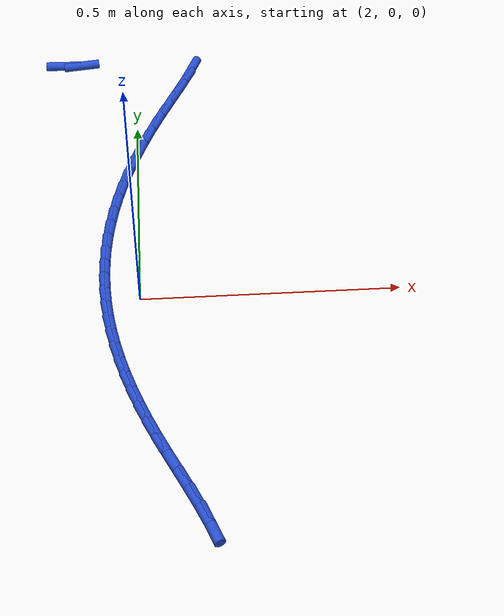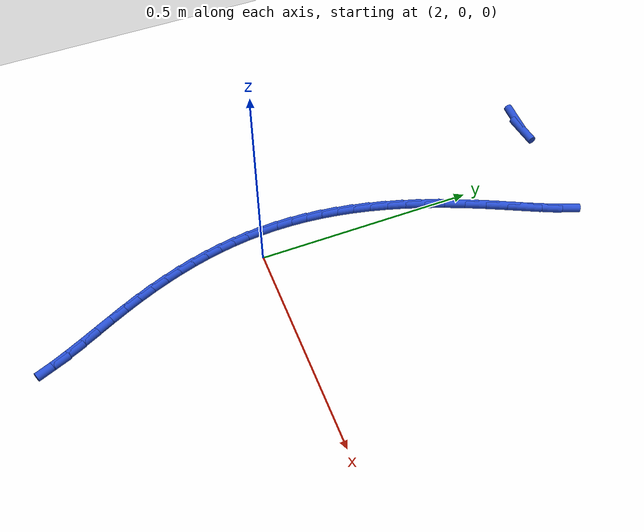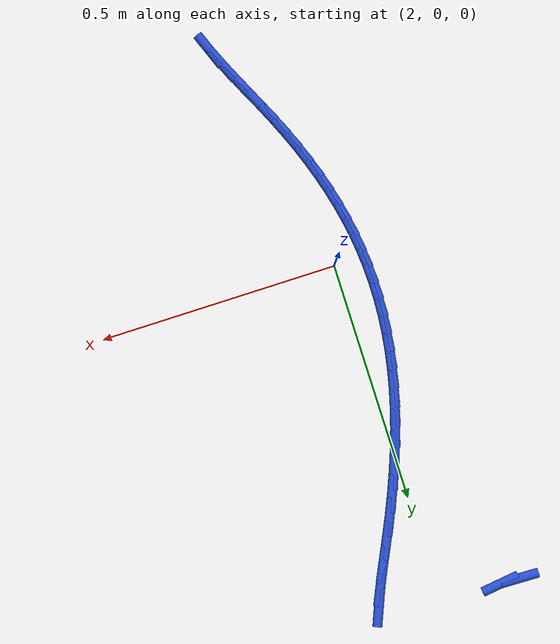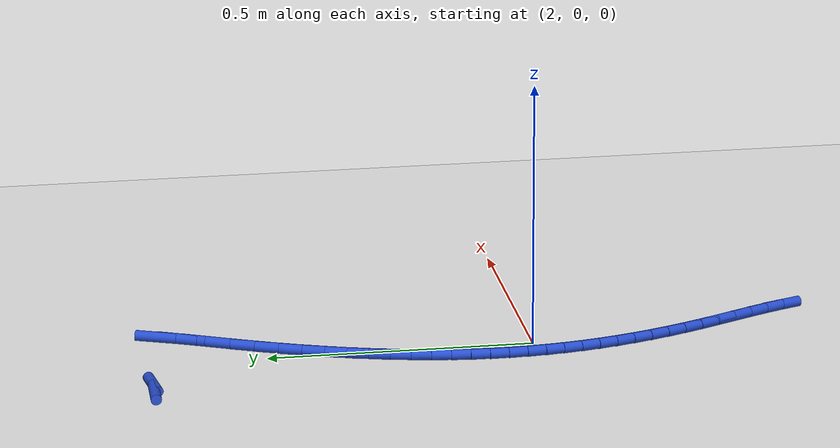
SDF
<sdf version="1.6">
 <world name="default">
  <model name="ground_plane">
   <static>1</static>
   <link name="link">
    <collision name="collision">
     <geometry><plane><normal>0 0 1</normal><size>100 100</size></plane></geometry>
     <surface><friction><ode><mu>100</mu><mu2>50</mu2></ode></friction></surface>
    </collision>
    <visual name="visual">
     <cast_shadows>0</cast_shadows>
     <geometry><plane><normal>0 0 1</normal><size>100 100</size></plane></geometry>
     <material>
      <script><uri>file://media/materials/scripts/gazebo.material</uri><name>Gazebo/WhiteGlow</name></script>
     </material>
    </visual>
   </link>
  </model>
  <model name="line">
   <link name="link_80">
    <pose>1.8326549398146046 0.724464329275963 0.01 0 1.57 -0.023806323502087272</pose>
    <collision name="collision">
     <geometry><cylinder><radius>0.01</radius><length>0.08</length></cylinder></geometry>
    </collision>
    <visual name="visual">
     <material>
      <script><name>Gazebo/Blue</name><uri>file://media/materials/scripts/gazebo.material</uri></script>
     </material>
     <geometry><cylinder><radius>0.01</radius><length>0.08</length></cylinder></geometry>
    </visual>
   </link>
   <link name="link_81">
    <pose>1.873327043071354 0.7234958930705628 0.01 0 1.57 0.13040840547339128</pose>
    <collision name="collision">
     <geometry><cylinder><radius>0.01</radius><length>0.08</length></cylinder></geometry>
    </collision>
    <visual name="visual">
     <material>
      <script><name>Gazebo/Blue</name><uri>file://media/materials/scripts/gazebo.material</uri></script>
     </material>
     <geometry><cylinder><radius>0.01</radius><length>0.08</length></cylinder></geometry>
    </visual>
   </link>
   <link name="link_91">
    <pose>2.1252905175461856 0.693174791233995 0.01 0 1.57 1.1824344360607957</pose>
    <collision name="collision">
     <geometry><cylinder><radius>0.01</radius><length>0.08</length></cylinder></geometry>
    </collision>
    <visual name="visual">
     <material>
      <script><name>Gazebo/Blue</name><uri>file://media/materials/scripts/gazebo.material</uri></script>
     </material>
     <geometry><cylinder><radius>0.01</radius><length>0.08</length></cylinder></geometry>
    </visual>
   </link>
   <link name="link_92">
    <pose>2.109580934330799 0.6547783181338066 0.01 0 1.57 1.138670818970482</pose>
    <collision name="collision">
     <geometry><cylinder><radius>0.01</radius><length>0.08</length></cylinder></geometry>
    </collision>
    <visual name="visual">
     <material>
      <script><name>Gazebo/Blue</name><uri>file://media/materials/scripts/gazebo.material</uri></script>
     </material>
     <geometry><cylinder><radius>0.01</radius><length>0.08</length></cylinder></geometry>
    </visual>
   </link>
   <link name="link_93">
    <pose>2.090067640424137 0.6124681306256387 0.01 0 1.57 1.1241841920452187</pose>
    <collision name="collision">
     <geometry><cylinder><radius>0.01</radius><length>0.08</length></cylinder></geometry>
    </collision>
    <visual name="visual">
     <material>
      <script><name>Gazebo/Blue</name><uri>file://media/materials/scripts/gazebo.material</uri></script>
     </material>
     <geometry><cylinder><radius>0.01</radius><length>0.08</length></cylinder></geometry>
    </visual>
   </link>
   <link name="link_94">
    <pose>2.0688002551658156 0.5680577757618556 0.01 0 1.57 1.1320503994265492</pose>
    <collision name="collision">
     <geometry><cylinder><radius>0.01</radius><length>0.08</length></cylinder></geometry>
    </collision>
    <visual name="visual">
     <material>
      <script><name>Gazebo/Blue</name><uri>file://media/materials/scripts/gazebo.material</uri></script>
     </material>
     <geometry><cylinder><radius>0.01</radius><length>0.08</length></cylinder></geometry>
    </visual>
   </link>
   <link name="link_95">
    <pose>2.047824630730444 0.5233574013210074 0.01 0 1.57 1.156094486937873</pose>
    <collision name="collision">
     <geometry><cylinder><radius>0.01</radius><length>0.08</length></cylinder></geometry>
    </collision>
    <visual name="visual">
     <material>
      <script><name>Gazebo/Blue</name><uri>file://media/materials/scripts/gazebo.material</uri></script>
     </material>
     <geometry><cylinder><radius>0.01</radius><length>0.08</length></cylinder></geometry>
    </visual>
   </link>
   <link name="link_96">
    <pose>2.028570541992315 0.4796212422318486 0.01 0 1.57 1.183788707067085</pose>
    <collision name="collision">
     <geometry><cylinder><radius>0.01</radius><length>0.08</length></cylinder></geometry>
    </collision>
    <visual name="visual">
     <material>
      <script><name>Gazebo/Blue</name><uri>file://media/materials/scripts/gazebo.material</uri></script>
     </material>
     <geometry><cylinder><radius>0.01</radius><length>0.08</length></cylinder></geometry>
    </visual>
   </link>
   <link name="link_97">
    <pose>2.01117358858686 0.43693574385387096 0.01 0 1.57 1.2134644137332158</pose>
    <collision name="collision">
     <geometry><cylinder><radius>0.01</radius><length>0.08</length></cylinder></geometry>
    </collision>
    <visual name="visual">
     <material>
      <script><name>Gazebo/Blue</name><uri>file://media/materials/scripts/gazebo.material</uri></script>
     </material>
     <geometry><cylinder><radius>0.01</radius><length>0.08</length></cylinder></geometry>
    </visual>
   </link>
   <link name="link_98">
    <pose>1.9956060752997251 0.39524000363217643 0.01 0 1.57 1.2451475450937168</pose>
    <collision name="collision">
     <geometry><cylinder><radius>0.01</radius><length>0.08</length></cylinder></geometry>
    </collision>
    <visual name="visual">
     <material>
      <script><name>Gazebo/Blue</name><uri>file://media/materials/scripts/gazebo.material</uri></script>
     </material>
     <geometry><cylinder><radius>0.01</radius><length>0.08</length></cylinder></geometry>
    </visual>
   </link>
   <link name="link_99">
    <pose>1.9818403069165513 0.3544731190118684 0.01 0 1.57 1.2788328422086663</pose>
    <collision name="collision">
     <geometry><cylinder><radius>0.01</radius><length>0.08</length></cylinder></geometry>
    </collision>
    <visual name="visual">
     <material>
      <script><name>Gazebo/Blue</name><uri>file://media/materials/scripts/gazebo.material</uri></script>
     </material>
     <geometry><cylinder><radius>0.01</radius><length>0.08</length></cylinder></geometry>
    </visual>
   </link>
   <link name="link_100">
    <pose>1.9698485882229835 0.31457418743804916 0.01 0 1.57 1.3144770356960842</pose>
    <collision name="collision">
     <geometry><cylinder><radius>0.01</radius><length>0.08</length></cylinder></geometry>
    </collision>
    <visual name="visual">
     <material>
      <script><name>Gazebo/Blue</name><uri>file://media/materials/scripts/gazebo.material</uri></script>
     </material>
     <geometry><cylinder><radius>0.01</radius><length>0.08</length></cylinder></geometry>
    </visual>
   </link>
   <link name="link_101">
    <pose>1.9596032240046624 0.2754823063558203 0.01 0 1.57 1.351992419440996</pose>
    <collision name="collision">
     <geometry><cylinder><radius>0.01</radius><length>0.08</length></cylinder></geometry>
    </collision>
    <visual name="visual">
     <material>
      <script><name>Gazebo/Blue</name><uri>file://media/materials/scripts/gazebo.material</uri></script>
     </material>
     <geometry><cylinder><radius>0.01</radius><length>0.08</length></cylinder></geometry>
    </visual>
   </link>
   <link name="link_102">
    <pose>1.9510765190472328 0.23713657321028517 0.01 0 1.57 1.3912415287960167</pose>
    <collision name="collision">
     <geometry><cylinder><radius>0.01</radius><length>0.08</length></cylinder></geometry>
    </collision>
    <visual name="visual">
     <material>
      <script><name>Gazebo/Blue</name><uri>file://media/materials/scripts/gazebo.material</uri></script>
     </material>
     <geometry><cylinder><radius>0.01</radius><length>0.08</length></cylinder></geometry>
    </visual>
   </link>
   <link name="link_103">
    <pose>1.944240778136336 0.1994760854465459 0.01 0 1.57 1.4320337570011614</pose>
    <collision name="collision">
     <geometry><cylinder><radius>0.01</radius><length>0.08</length></cylinder></geometry>
    </collision>
    <visual name="visual">
     <material>
      <script><name>Gazebo/Blue</name><uri>file://media/materials/scripts/gazebo.material</uri></script>
     </material>
     <geometry><cylinder><radius>0.01</radius><length>0.08</length></cylinder></geometry>
    </visual>
   </link>
   <link name="link_104">
    <pose>1.9390683060576166 0.16243994050970476 0.01 0 1.57 1.4741247549731071</pose>
    <collision name="collision">
     <geometry><cylinder><radius>0.01</radius><length>0.08</length></cylinder></geometry>
    </collision>
    <visual name="visual">
     <material>
      <script><name>Gazebo/Blue</name><uri>file://media/materials/scripts/gazebo.material</uri></script>
     </material>
     <geometry><cylinder><radius>0.01</radius><length>0.08</length></cylinder></geometry>
    </visual>
   </link>
   <link name="link_105">
    <pose>1.935531407596716 0.12596723584486424 0.01 0 1.57 1.517219317856337</pose>
    <collision name="collision">
     <geometry><cylinder><radius>0.01</radius><length>0.08</length></cylinder></geometry>
    </collision>
    <visual name="visual">
     <material>
      <script><name>Gazebo/Blue</name><uri>file://media/materials/scripts/gazebo.material</uri></script>
     </material>
     <geometry><cylinder><radius>0.01</radius><length>0.08</length></cylinder></geometry>
    </visual>
   </link>
   <link name="link_106">
    <pose>1.933602387539278 0.08999706889712598 0.01 0 1.57 1.560978142878517</pose>
    <collision name="collision">
     <geometry><cylinder><radius>0.01</radius><length>0.08</length></cylinder></geometry>
    </collision>
    <visual name="visual">
     <material>
      <script><name>Gazebo/Blue</name><uri>file://media/materials/scripts/gazebo.material</uri></script>
     </material>
     <geometry><cylinder><radius>0.01</radius><length>0.08</length></cylinder></geometry>
    </visual>
   </link>
   <link name="link_107">
    <pose>1.933253550670945 0.05446853711159397 0.01 0 1.57 -1.5365642855692117</pose>
    <collision name="collision">
     <geometry><cylinder><radius>0.01</radius><length>0.08</length></cylinder></geometry>
    </collision>
    <visual name="visual">
     <material>
      <script><name>Gazebo/Blue</name><uri>file://media/materials/scripts/gazebo.material</uri></script>
     </material>
     <geometry><cylinder><radius>0.01</radius><length>0.08</length></cylinder></geometry>
    </visual>
   </link>
   <link name="link_108">
    <pose>1.9344572017773605 0.019320737933369872 0.01 0 1.57 -1.4926154082358138</pose>
    <collision name="collision">
     <geometry><cylinder><radius>0.01</radius><length>0.08</length></cylinder></geometry>
    </collision>
    <visual name="visual">
     <material>
      <script><name>Gazebo/Blue</name><uri>file://media/materials/scripts/gazebo.material</uri></script>
     </material>
     <geometry><cylinder><radius>0.01</radius><length>0.08</length></cylinder></geometry>
    </visual>
   </link>
   <link name="link_109">
    <pose>1.9371856456441678 -0.015507231192443932 0.01 0 1.57 -1.4491648674850988</pose>
    <collision name="collision">
     <geometry><cylinder><radius>0.01</radius><length>0.08</length></cylinder></geometry>
    </collision>
    <visual name="visual">
     <material>
      <script><name>Gazebo/Blue</name><uri>file://media/materials/scripts/gazebo.material</uri></script>
     </material>
     <geometry><cylinder><radius>0.01</radius><length>0.08</length></cylinder></geometry>
    </visual>
   </link>
   <link name="link_110">
    <pose>1.941411187057008 -0.050076272820745005 0.01 0 1.57 -1.4065977870085</pose>
    <collision name="collision">
     <geometry><cylinder><radius>0.01</radius><length>0.08</length></cylinder></geometry>
    </collision>
    <visual name="visual">
     <material>
      <script><name>Gazebo/Blue</name><uri>file://media/materials/scripts/gazebo.material</uri></script>
     </material>
     <geometry><cylinder><radius>0.01</radius><length>0.08</length></cylinder></geometry>
    </visual>
   </link>
   <link name="link_111">
    <pose>1.9471061308015265 -0.08444728950643095 0.01 0 1.57 -1.3652724532759568</pose>
    <collision name="collision">
     <geometry><cylinder><radius>0.01</radius><length>0.08</length></cylinder></geometry>
    </collision>
    <visual name="visual">
     <material>
      <script><name>Gazebo/Blue</name><uri>file://media/materials/scripts/gazebo.material</uri></script>
     </material>
     <geometry><cylinder><radius>0.01</radius><length>0.08</length></cylinder></geometry>
    </visual>
   </link>
   <link name="link_112">
    <pose>1.9542427816633638 -0.11868118380440007 0.01 0 1.57 -1.3255078677519274</pose>
    <collision name="collision">
     <geometry><cylinder><radius>0.01</radius><length>0.08</length></cylinder></geometry>
    </collision>
    <visual name="visual">
     <material>
      <script><name>Gazebo/Blue</name><uri>file://media/materials/scripts/gazebo.material</uri></script>
     </material>
     <geometry><cylinder><radius>0.01</radius><length>0.08</length></cylinder></geometry>
    </visual>
   </link>
   <link name="link_113">
    <pose>1.9627934444281647 -0.1528388582695484 0.01 0 1.57 -1.2875747793883623</pose>
    <collision name="collision">
     <geometry><cylinder><radius>0.01</radius><length>0.08</length></cylinder></geometry>
    </collision>
    <visual name="visual">
     <material>
      <script><name>Gazebo/Blue</name><uri>file://media/materials/scripts/gazebo.material</uri></script>
     </material>
     <geometry><cylinder><radius>0.01</radius><length>0.08</length></cylinder></geometry>
    </visual>
   </link>
   <link name="link_114">
    <pose>1.972730423881572 -0.18698121545677435 0.01 0 1.57 -1.25169060369161</pose>
    <collision name="collision">
     <geometry><cylinder><radius>0.01</radius><length>0.08</length></cylinder></geometry>
    </collision>
    <visual name="visual">
     <material>
      <script><name>Gazebo/Blue</name><uri>file://media/materials/scripts/gazebo.material</uri></script>
     </material>
     <geometry><cylinder><radius>0.01</radius><length>0.08</length></cylinder></geometry>
    </visual>
   </link>
   <link name="link_115">
    <pose>1.984026024809227 -0.2211691579209754 0.01 0 1.57 -1.218018100830749</pose>
    <collision name="collision">
     <geometry><cylinder><radius>0.01</radius><length>0.08</length></cylinder></geometry>
    </collision>
    <visual name="visual">
     <material>
      <script><name>Gazebo/Blue</name><uri>file://media/materials/scripts/gazebo.material</uri></script>
     </material>
     <geometry><cylinder><radius>0.01</radius><length>0.08</length></cylinder></geometry>
    </visual>
   </link>
   <link name="link_116">
    <pose>1.9966525519967742 -0.25546358821704923 0.01 0 1.57 -1.1866672708235273</pose>
    <collision name="collision">
     <geometry><cylinder><radius>0.01</radius><length>0.08</length></cylinder></geometry>
    </collision>
    <visual name="visual">
     <material>
      <script><name>Gazebo/Blue</name><uri>file://media/materials/scripts/gazebo.material</uri></script>
     </material>
     <geometry><cylinder><radius>0.01</radius><length>0.08</length></cylinder></geometry>
    </visual>
   </link>
   <link name="link_117">
    <pose>2.010582310229856 -0.2899254088998934 0.01 0 1.57 -1.1576996809943494</pose>
    <collision name="collision">
     <geometry><cylinder><radius>0.01</radius><length>0.08</length></cylinder></geometry>
    </collision>
    <visual name="visual">
     <material>
      <script><name>Gazebo/Blue</name><uri>file://media/materials/scripts/gazebo.material</uri></script>
     </material>
     <geometry><cylinder><radius>0.01</radius><length>0.08</length></cylinder></geometry>
    </visual>
   </link>
   <link name="link_118">
    <pose>2.025787604294115 -0.3246155225244054 0.01 0 1.57 -1.132495735612264</pose>
    <collision name="collision">
     <geometry><cylinder><radius>0.01</radius><length>0.08</length></cylinder></geometry>
    </collision>
    <visual name="visual">
     <material>
      <script><name>Gazebo/Blue</name><uri>file://media/materials/scripts/gazebo.material</uri></script>
     </material>
     <geometry><cylinder><radius>0.01</radius><length>0.08</length></cylinder></geometry>
    </visual>
   </link>
   <link name="link_119">
    <pose>2.0421768383542247 -0.3595824944784238 0.01 0 1.57 -1.118825105426862</pose>
    <collision name="collision">
     <geometry><cylinder><radius>0.01</radius><length>0.08</length></cylinder></geometry>
    </collision>
    <visual name="visual">
     <material>
      <script><name>Gazebo/Blue</name><uri>file://media/materials/scripts/gazebo.material</uri></script>
     </material>
     <geometry><cylinder><radius>0.01</radius><length>0.08</length></cylinder></geometry>
    </visual>
   </link>
   <link name="link_120">
    <pose>2.059274950083748 -0.39480085502945583 0.01 0 1.57 -1.1189372080922677</pose>
    <collision name="collision">
     <geometry><cylinder><radius>0.01</radius><length>0.08</length></cylinder></geometry>
    </collision>
    <visual name="visual">
     <material>
      <script><name>Gazebo/Blue</name><uri>file://media/materials/scripts/gazebo.material</uri></script>
     </material>
     <geometry><cylinder><radius>0.01</radius><length>0.08</length></cylinder></geometry>
    </visual>
   </link>
   <link name="link_121">
    <pose>2.0764644907861776 -0.43021764418892366 0.01 0 1.57 -1.1326096687831506</pose>
    <collision name="collision">
     <geometry><cylinder><radius>0.01</radius><length>0.08</length></cylinder></geometry>
    </collision>
    <visual name="visual">
     <material>
      <script><name>Gazebo/Blue</name><uri>file://media/materials/scripts/gazebo.material</uri></script>
     </material>
     <geometry><cylinder><radius>0.01</radius><length>0.08</length></cylinder></geometry>
    </visual>
   </link>
   <link name="link_122">
    <pose>2.093127776078562 -0.465779856464731 0.01 0 1.57 -1.160260221847756</pose>
    <collision name="collision">
     <geometry><cylinder><radius>0.01</radius><length>0.08</length></cylinder></geometry>
    </collision>
    <visual name="visual">
     <material>
      <script><name>Gazebo/Blue</name><uri>file://media/materials/scripts/gazebo.material</uri></script>
     </material>
     <geometry><cylinder><radius>0.01</radius><length>0.08</length></cylinder></geometry>
    </visual>
   </link>
   <link name="link_123">
    <pose>2.1086471215779485 -0.5014344863647816 0.01 0 1.57 -1.2029089812999347</pose>
    <collision name="collision">
     <geometry><cylinder><radius>0.01</radius><length>0.08</length></cylinder></geometry>
    </collision>
    <visual name="visual">
     <material>
      <script><name>Gazebo/Blue</name><uri>file://media/materials/scripts/gazebo.material</uri></script>
     </material>
     <geometry><cylinder><radius>0.01</radius><length>0.08</length></cylinder></geometry>
    </visual>
   </link>
  </model>
 </world>
</sdf>
